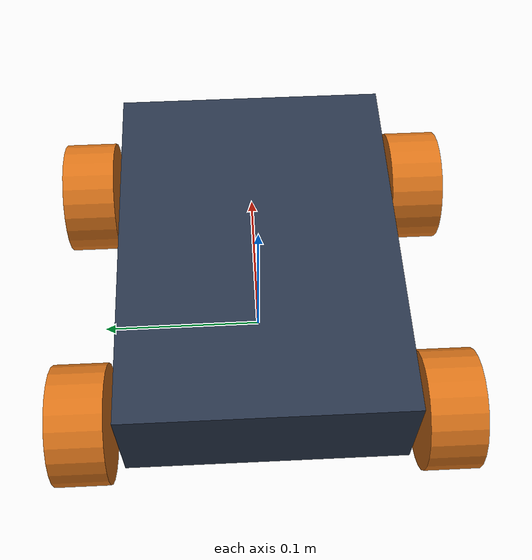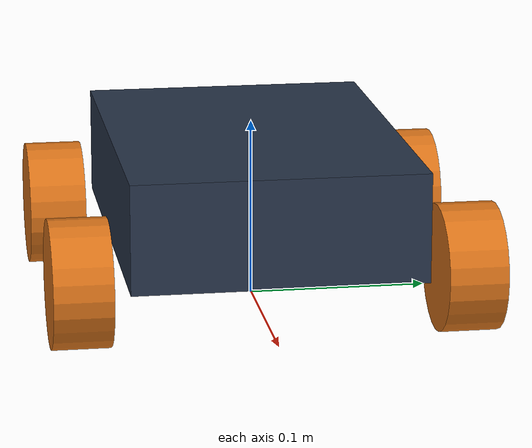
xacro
<?xml version="1.0"?>
<robot xmlns:xacro="http://www.ros.org/wiki/xacro">

  <!-- Propiedades geométricas de la base mecanum -->
  <xacro:property name="chassis_length" value="0.22"/>
  <xacro:property name="chassis_width" value="0.16"/>
  <xacro:property name="chassis_height" value="0.06"/>
  <xacro:property name="chassis_mass" value="2.5"/>

  <xacro:property name="wheel_radius" value="0.035"/>
  <xacro:property name="wheel_width" value="0.032"/>
  <xacro:property name="wheel_mass" value="0.15"/>

  <xacro:property name="wheel_x_offset" value="0.0825"/> <!-- Media distancia entre ejes: l/2 -->
  <xacro:property name="wheel_y_offset" value="0.105"/>  <!-- Media distancia entre ruedas: w/2 -->
  <xacro:property name="wheel_z_offset" value="0.0"/>

  <!-- Macro inercial para cajas -->
  <xacro:macro name="box_inertia" params="m w h d">
    <inertial>
      <origin xyz="0 0 0" rpy="0 0 0"/>
      <mass value="${m}"/>
      <inertia ixx="${(m/12) * (h*h + d*d)}" ixy="0.0" ixz="0.0"
               iyy="${(m/12) * (w*w + d*d)}" iyz="0.0"
               izz="${(m/12) * (w*w + h*h)}"/>
    </inertial>
  </xacro:macro>

  <!-- Macro inercial para cilindros -->
  <xacro:macro name="cylinder_inertia" params="m r h">
    <inertial>
      <origin xyz="0 0 0" rpy="0 0 0"/>
      <mass value="${m}"/>
      <inertia ixx="${(m/12) * (3*r*r + h*h)}" ixy="0" ixz="0"
               iyy="${(m/12) * (3*r*r + h*h)}" iyz="0"
               izz="${(m/2) * (r*r)}"/>
    </inertial>
  </xacro:macro>

  <!-- Base footprint y Base link -->
  <link name="base_footprint"/>

  <joint name="base_joint" type="fixed">
    <parent link="base_footprint"/>
    <child link="base_link"/>
    <origin xyz="0 0 ${wheel_radius}" rpy="0 0 0"/>
  </joint>

  <link name="base_link">
    <visual>
      <origin xyz="0 0 ${chassis_height/2}" rpy="0 0 0"/>
      <geometry>
        <box size="${chassis_length} ${chassis_width} ${chassis_height}"/>
      </geometry>
      <material name="chassis_color">
        <color rgba="0.15 0.20 0.28 1.0"/>
      </material>
    </visual>
    <collision>
      <origin xyz="0 0 ${chassis_height/2}" rpy="0 0 0"/>
      <geometry>
        <box size="${chassis_length} ${chassis_width} ${chassis_height}"/>
      </geometry>
    </collision>
    <xacro:box_inertia m="${chassis_mass}" w="${chassis_width}" h="${chassis_height}" d="${chassis_length}"/>
  </link>

  <!-- Macro para ruedas mecanum -->
  <xacro:macro name="mecanum_wheel" params="prefix x_reflect y_reflect">
    <link name="${prefix}_wheel_link">
      <visual>
        <origin xyz="0 0 0" rpy="${pi/2} 0 0"/>
        <geometry>
          <cylinder radius="${wheel_radius}" length="${wheel_width}"/>
        </geometry>
        <material name="wheel_color">
          <color rgba="0.85 0.45 0.10 1.0"/>
        </material>
      </visual>
      <collision>
        <origin xyz="0 0 0" rpy="${pi/2} 0 0"/>
        <geometry>
          <cylinder radius="${wheel_radius}" length="${wheel_width}"/>
        </geometry>
      </collision>
      <xacro:cylinder_inertia m="${wheel_mass}" r="${wheel_radius}" h="${wheel_width}"/>
    </link>

    <joint name="${prefix}_wheel_joint" type="continuous">
      <parent link="base_link"/>
      <child link="${prefix}_wheel_link"/>
      <origin xyz="${x_reflect * wheel_x_offset} ${y_reflect * wheel_y_offset} ${wheel_z_offset}" rpy="0 0 0"/>
      <axis xyz="0 1 0"/>
      <dynamics damping="0.05" friction="0.05"/>
    </joint>

    <gazebo reference="${prefix}_wheel_link">
      <mu1>1.0</mu1>
      <mu2>0.0</mu2>
      <kp>1000000.0</kp>
      <kd>100.0</kd>
      <material>Gazebo/Orange</material>
    </gazebo>
  </xacro:macro>

  <!-- Instanciación de las 4 ruedas -->
  <xacro:mecanum_wheel prefix="front_left"  x_reflect="1"  y_reflect="1" />
  <xacro:mecanum_wheel prefix="front_right" x_reflect="1"  y_reflect="-1"/>
  <xacro:mecanum_wheel prefix="rear_left"   x_reflect="-1" y_reflect="1" />
  <xacro:mecanum_wheel prefix="rear_right"  x_reflect="-1" y_reflect="-1"/>

</robot>
